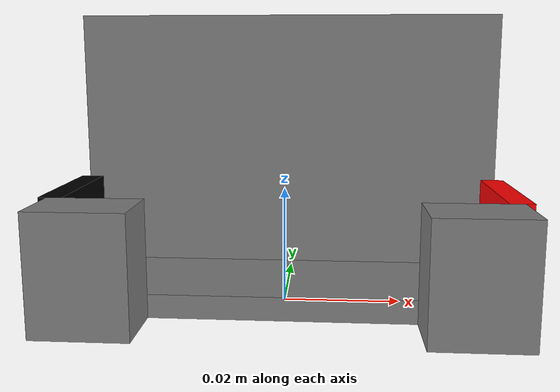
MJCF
<mujoco model="AA_charger">
    <worldbody>
        <body name="charger_AA" pos="0 0 0">

            <!-- Back wall -->
            <geom name="back_wall" type="box" pos="0 0.015 0.025" size="0.038 0.005 0.025" rgba="0.5 0.5 0.5 1" density="1200" friction="1 0.005 0.0001" condim="4"/>

            <!-- Bottom right -->
            <geom name="bottom" type="box" pos="0 0 0.002" size="0.038 0.01 0.002" rgba=" 0.5 0.5 0.5 1" density="1200" friction="1 0.005 0.0001" condim="4"/>

            <!-- Right wall -->
            <geom name="right_wall" type="box" pos="0.0375 0 0.0125" size="0.002 0.01 0.0075" rgba="1 0 0 1" density="1200" friction="1 0.005 0.0001" condim="4"/>

            <!-- Right hook -->
            <geom name="right_hook" type="box" pos="0.03 -0.015 0.01" size="0.008 0.005 0.01" rgba="0.5 0.5 0.5 1" density="1200" friction="1 0.005 0.0001" condim="4"/>

            <!-- Bottom left -->

            <!-- Left wall -->
            <geom name="left_wall" type="box" pos="-0.0375 0 0.0125" size="0.002 0.01 0.0075" rgba="0 0 0 1" density="1200" friction="1 0.005 0.0001" condim="4"/>

            <!-- Left hook -->
            <geom name="left_hook" type="box" pos="-0.03 -0.015 0.01" size="0.008 0.005 0.01" rgba="0.5 0.5 0.5 1" density="1200" friction="1 0.005 0.0001" condim="4"/>

            <!-- Make it one solid object -->
        </body>
    </worldbody>
</mujoco>
